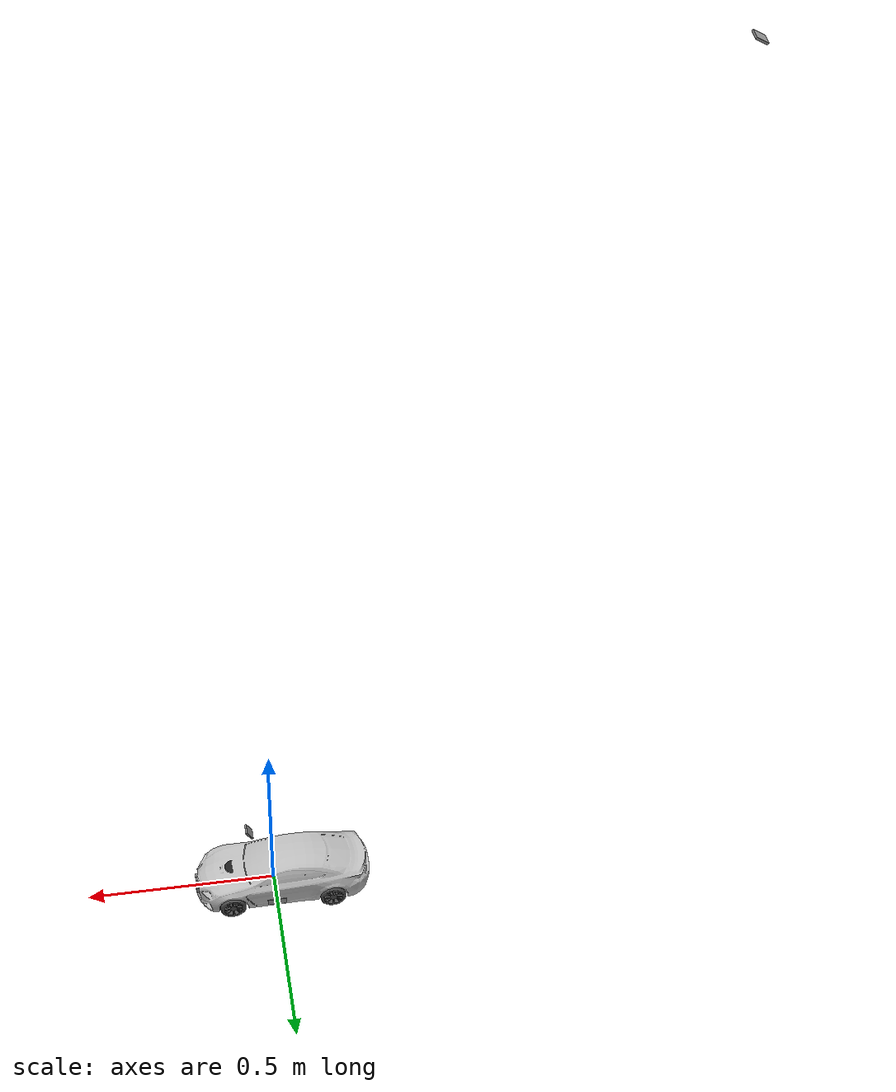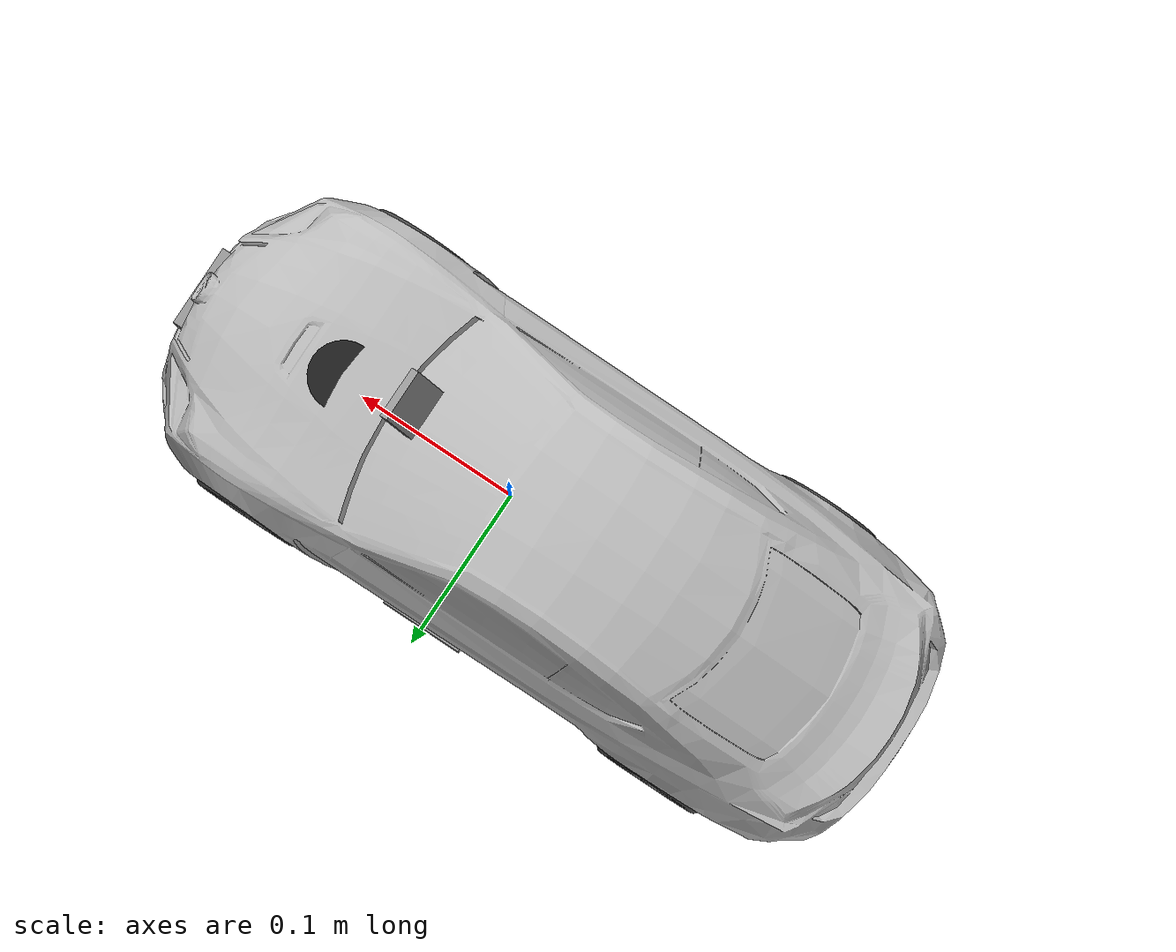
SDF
<?xml version='1.0'?>
<sdf version='1.6'>
  <model name='automobile'>
    <include>
      <uri>model://chassis</uri>
      <pose>0 0 0 0 0 0</pose>
    </include>
    <!-- including a left rear wheel -->
    <include>
      <uri>model://wheel_left</uri>
      <pose>-0.152 0.081 0 0 0 0</pose>
      <name>wheel_rear_left</name>
    </include>
    <!-- including a front rear wheel -->
    <include>
      <uri>model://wheel_right</uri>
      <pose>-0.152 -0.081 0 0 0 0</pose>
      <name>wheel_rear_right</name>
    </include>
    <!-- including a left steering comp. -->
    <include>
      <uri>model://steering_column</uri>
      <pose>0.112 0.0725 0 0 0 0</pose>
      <name>steer_left</name>
    </include>
    <!-- including a right steering comp. -->
    <include>
      <uri>model://steering_column</uri>
      <pose>0.112 -0.0725 0 0 0 0</pose>
      <name>steer_right</name>
    </include>
    <!-- including a left front wheel -->
    <include>
      <uri>model://wheel_left</uri>
      <pose>0.118 0.081 0 0 0 0</pose>
      <name>wheel_front_left</name>
    </include>
    <!-- including a right front wheel -->
    <include>
      <uri>model://wheel_right</uri>
      <pose>0.118 -0.081 0 0 0 0</pose>
      <name>wheel_front_right</name>
    </include>

    <!-- including the camera link -->
    <include>
      <uri>model://camera</uri>
      <pose>0.06 0 0.211 0 0.5235988 0</pose>          <!-- 0.052 the x for wide -->
      <name>camera</name>
    </include>

    <!-- including camera top for 3rd person view -->
    <include>
      <uri>model://camera_top</uri>
      <pose>-1 0 2.5 0 1.04 0</pose>
      <name>camera_top</name>
    </include>

    <!-- including the car body -->
    <include>
      <uri>model://car_body</uri>
      <pose>-0.024 0.0 -0.028 0 0.0 0</pose>
      <name>car_body</name>
    </include>

    <!-- INCLUDING THE ULTRASONIC SENSOR 1 -->
    <include>
      <uri>model://sonar1</uri>
      <pose>0.2 0 0.01 0 0.0 0</pose>
      <name>sonar1</name>
    </include>

    <!-- INCLUDING THE ULTRASONIC SENSOR 2 -->
    <include>
      <uri>model://sonar2</uri>
      <pose>0 -0.08 0.01 0.0 0.0 -1.5708 </pose>
      <name>sonar2</name>
    </include>

    <!-- INCLUDING THE ULTRASONIC SENSOR 3 -->
    <include>
      <uri>model://sonar3</uri>
      <pose>0 0.08 0.01 0.0 0.0 1.5708 </pose>
      <name>sonar3</name>
    </include>

    <!-- INCLUDING THE LIDAR -->

    <include>
      <uri>model://lidar</uri>
      <pose>0.11 0 0.065 0 0 0</pose>
      <name>lidar</name>
    </include>

    <!-- LIST OF JOINTS -->
    <joint name='joint_leftrear_rim' type='revolute'>
      <parent>chassis::link</parent>
      <child>wheel_rear_left::link_rim</child>
      <pose frame=''>0 0 0 0 -0 0</pose>
      <axis>
        <xyz>0 0 -1</xyz>
        <use_parent_model_frame>0</use_parent_model_frame>
        <limit>
          <lower>-1.79769e+308</lower>
          <upper>1.79769e+308</upper>
          <effort>-1</effort>
          <velocity>-1</velocity>
        </limit>
        <dynamics>
          <spring_reference>0</spring_reference>
          <spring_stiffness>0</spring_stiffness>
          <damping>0</damping>
          <friction>0</friction>
        </dynamics>
      </axis>
      <physics>
        <ode>
          <limit>
            <cfm>0</cfm>
            <erp>0.2</erp>
          </limit>
          <suspension>
            <cfm>0</cfm>
            <erp>0.2</erp>
          </suspension>
        </ode>
      </physics>
    </joint>

    <joint name='joint_rightrear_rim' type='revolute'>
      <parent>chassis::link</parent>
      <child>wheel_rear_right::link_rim</child>
      <pose frame=''>0 0 0 0 -0 0</pose>
      <axis>
        <xyz>0 0 -1</xyz>
        <use_parent_model_frame>0</use_parent_model_frame>
        <limit>
          <lower>-1.79769e+308</lower>
          <upper>1.79769e+308</upper>
          <effort>-1</effort>
          <velocity>-1</velocity>
        </limit>
        <dynamics>
          <spring_reference>0</spring_reference>
          <spring_stiffness>0</spring_stiffness>
          <damping>0</damping>
          <friction>0</friction>
        </dynamics>
      </axis>
      <physics>
        <ode>
          <limit>
            <cfm>0</cfm>
            <erp>0.2</erp>
          </limit>
          <suspension>
            <cfm>0</cfm>
            <erp>0.2</erp>
          </suspension>
        </ode>
      </physics>
    </joint>

    <!-- Front right joint between the chassis and the steering comp. -->
    <joint name='joint_leftfront_steer' type='revolute'>
      <parent>chassis::link</parent>
      <child>steer_left::link_steer</child>
      <pose frame=''>0 0 0.005 0 -0 0</pose>
      <axis>
        <xyz>0 1 0</xyz>
        <use_parent_model_frame>0</use_parent_model_frame>
        <limit>
          <lower>-1.79769e+308</lower>
          <upper>1.79769e+308</upper>
          <effort>-1</effort>
          <velocity>-1</velocity>
        </limit>
        <dynamics>
          <spring_reference>0</spring_reference>
          <spring_stiffness>0</spring_stiffness>
          <damping>0</damping>
          <friction>0</friction>
        </dynamics>
      </axis>
      <physics>
        <ode>
          <limit>
            <cfm>0</cfm>
            <erp>0.2</erp>
          </limit>
          <suspension>
            <cfm>0</cfm>
            <erp>0.2</erp>
          </suspension>
        </ode>
      </physics>
    </joint>
    <!-- Front left joint between the chassis and the steering comp. -->
    <joint name='joint_rightfront_steer' type='revolute'>
      <parent>chassis::link</parent>
      <child>steer_right::link_steer</child>
      <pose frame=''>0 0 -0.005 0 -0 0</pose>
      <axis>
        <xyz>0 1 0</xyz>
        <use_parent_model_frame>0</use_parent_model_frame>
        <limit>
          <lower>-1.79769e+308</lower>
          <upper>1.79769e+308</upper>
          <effort>-1</effort>
          <velocity>-1</velocity>
        </limit>
        <dynamics>
          <spring_reference>0</spring_reference>
          <spring_stiffness>0</spring_stiffness>
          <damping>0</damping>
          <friction>0</friction>
        </dynamics>
      </axis>
      <physics>
        <ode>
          <limit>
            <cfm>0</cfm>
            <erp>0.2</erp>
          </limit>
          <suspension>
            <cfm>0</cfm>
            <erp>0.2</erp>
          </suspension>
        </ode>
      </physics>
    </joint>

    <!-- Right joint between the steering and the rim   -->
    <joint name='joint_rightfront_rim' type='revolute'>
      <parent>steer_right::link_steer</parent>
      <child>wheel_front_right::link_rim</child>
      <pose frame=''>0 0 0 0 -0 0</pose>
      <axis>
        <xyz>0 0 -1</xyz>
        <use_parent_model_frame>0</use_parent_model_frame>
        <limit>
          <lower>-1.79769e+308</lower>
          <upper>1.79769e+308</upper>
          <effort>-1</effort>
          <velocity>-1</velocity>
        </limit>
        <dynamics>
          <spring_reference>0</spring_reference>
          <spring_stiffness>0</spring_stiffness>
          <damping>0</damping>
          <friction>0</friction>
        </dynamics>
      </axis>
      <physics>
        <ode>
          <limit>
            <cfm>0</cfm>
            <erp>0.2</erp>
          </limit>
          <suspension>
            <cfm>0</cfm>
            <erp>0.2</erp>
          </suspension>
        </ode>
      </physics>
    </joint>

    <!-- Left joint between the steering and the rim   -->
    <joint name='joint_leftfront_rim' type='revolute'>
      <parent>steer_left::link_steer</parent>
      <child>wheel_front_left::link_rim</child>
      <pose frame=''>0 0 0 0 -0 0</pose>
      <axis>
        <xyz>0 0 -1</xyz>
        <use_parent_model_frame>0</use_parent_model_frame>
        <limit>
          <lower>-1.79769e+308</lower>
          <upper>1.79769e+308</upper>
          <effort>-1</effort>
          <velocity>-1</velocity>
        </limit>
        <dynamics>
          <spring_reference>0</spring_reference>
          <spring_stiffness>0</spring_stiffness>
          <damping>0</damping>
          <friction>0</friction>
        </dynamics>
      </axis>
      <physics>
        <ode>
          <limit>
            <cfm>0</cfm>
            <erp>0.2</erp>
          </limit>
          <suspension>
            <cfm>0</cfm>
            <erp>0.2</erp>
          </suspension>
        </ode>
      </physics>
    </joint>

    <!-- fixed joint for the car body -->
    <joint name='joint_body' type='fixed'>
      <parent>chassis::link</parent>
      <child>car_body::link</child>
      <pose frame=''>0 0 0 0 -0 0</pose>
      <physics>
        <ode>
          <limit>
            <cfm>0</cfm>
            <erp>0.2</erp>
          </limit>
          <suspension>
            <cfm>0</cfm>
            <erp>0.2</erp>
          </suspension>
        </ode>
      </physics>
    </joint>

    <!-- fixed joint for the camera -->
    <joint name='joint_camera' type='fixed'>
      <parent>chassis::link</parent>
      <child>camera::link_camera</child>
      <pose frame=''>0 0 0 0 -0 0</pose>
      <physics>
        <ode>
          <limit>
            <cfm>0</cfm>
            <erp>0.2</erp>
          </limit>
          <suspension>
            <cfm>0</cfm>
            <erp>0.2</erp>
          </suspension>
        </ode>
      </physics>
    </joint>

    <!-- fixed joint for camera top -->
    <joint name='joint_camera_top' type='fixed'>
      <parent>camera::link_camera</parent>
      <child>camera_top::link_camera_top</child>
      <pose frame=''>0 0 0 0 -0 0</pose>
    </joint>

    <!-- fixed joint for the ultrasonic sensor 1 -->
    <joint name='joint_sonar1' type='fixed'>
      <parent>chassis::link</parent>
      <child>sonar1::link_sonar1</child>
      <pose frame=''>0 0 0 0 -0 0</pose>
      <physics>
        <ode>
          <limit>
            <cfm>0</cfm>
            <erp>0.2</erp>
          </limit>
          <suspension>
            <cfm>0</cfm>
            <erp>0.2</erp>
          </suspension>
        </ode>
      </physics>
    </joint>

    <!-- fixed joint for the ultrasonic sensor 2 -->
    <joint name='joint_sonar2' type='fixed'>
      <parent>chassis::link</parent>
      <child>sonar2::link_sonar2</child>
      <pose frame=''>0 0 0 0 -0 0</pose>
      <physics>
        <ode>
          <limit>
            <cfm>0</cfm>
            <erp>0.2</erp>
          </limit>
          <suspension>
            <cfm>0</cfm>
            <erp>0.2</erp>
          </suspension>
        </ode>
      </physics>
    </joint>

    <!-- fixed joint for the ultrasonic sensor 3 -->
    <joint name='joint_sonar3' type='fixed'>
      <parent>chassis::link</parent>
      <child>sonar3::link_sonar3</child>
      <pose frame=''>0 0 0 0 -0 0</pose>
      <physics>
        <ode>
          <limit>
            <cfm>0</cfm>
            <erp>0.2</erp>
          </limit>
          <suspension>
            <cfm>0</cfm>
            <erp>0.2</erp>
          </suspension>
        </ode>
      </physics>
    </joint>

    <!-- Fixed joint for LiDAR -->

    <joint name='joint_lidar' type='fixed'>
      <parent>chassis::link</parent>
      <child>lidar::link_lidar</child>
      <pose frame=''>0 0 0 0 -0 0</pose>
    </joint>

    <!-- Plugin  -->
    <plugin name='CarLikeRobotPlugin' filename='libcar_plugin.so'>
      <wheelbase>0.26</wheelbase>
      <axletrack>0.162</axletrack>
      <wheelradius>0.0325</wheelradius>
      <speed_wheel_joints>
        <front_wheel_joints>
          <leftjoint>joint_leftfront_rim</leftjoint>
          <rightjoint>joint_rightfront_rim</rightjoint>
        </front_wheel_joints>
        <rear_wheel_joints>
          <leftjoint>joint_leftrear_rim</leftjoint>
          <rightjoint>joint_rightrear_rim</rightjoint>
        </rear_wheel_joints>
        <kp>0.01</kp>
        <ki>0.0</ki>
        <kd>0.0</kd>
      </speed_wheel_joints>
      <steer_wheel_joints>
        <leftjoint>joint_leftfront_steer</leftjoint>
        <rightjoint>joint_rightfront_steer</rightjoint>
        <kp>10</kp>
        <ki>0.0</ki>
        <kd>0.1</kd>
      </steer_wheel_joints>
      <initial_steer>0.0</initial_steer>
      <initial_speed>0.0</initial_speed>
      <robotNamespace>/</robotNamespace>
    </plugin>

    <plugin name='bno055' filename='libbno055_plugin.so'> </plugin>
    <plugin name='gps' filename='libgps_plugin.so'> </plugin>
    <plugin name='pose' filename='libpose_plugin.so'> </plugin>

  </model>
</sdf>

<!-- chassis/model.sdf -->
<sdf version='1.6'>
  <model name='chassis'>
    <link name='link'>
      <inertial>
        <mass>0.26244</mass>
        <inertia>
          <ixx>0.00283444</ixx>
          <ixy>0</ixy>
          <ixz>0</ixz>
          <iyy>0.00039867</iyy>
          <iyz>0</iyz>
          <izz>0.00323293</izz>
        </inertia>
        <pose frame=''>0 0 0 0 -0 0</pose>
      </inertial>
      <pose frame=''>0 0 0 0 0 1.5708</pose>
      <gravity>1</gravity>
      <kinematic>0</kinematic>
      <enable_wind>0</enable_wind>
      <visual name='visual'>
        <pose frame=''>0 0 -0.0065 0 0 -1.57079</pose>
        <geometry>
          <mesh>
            <uri>model://chassis/meshes/chassisV5.dae</uri>
            <scale>1 1 1</scale>
          </mesh>
        </geometry>
        <material>
          <lighting>1</lighting>
          <shader type='vertex'>
            <normal_map>__default__</normal_map>
          </shader>
          <ambient>0.6 0.6 0.6 1</ambient>
          <diffuse>0.85 0.85 0.85 1</diffuse>
          <specular>0.6 0.6 0.6 1</specular>
          <emissive>0 0 0 1</emissive>
        </material>
        <transparency>0</transparency>
        <cast_shadows>1</cast_shadows>
      </visual>
      <collision name='collision'>
        <laser_retro>0</laser_retro>
        <max_contacts>10</max_contacts>
        <pose frame=''>0 0 0 0 -0 0</pose>
        <geometry>
          <box>
            <size>0.135 0.36 0.002</size>
          </box>
        </geometry>
        <surface>
          <friction>
            <ode>
              <mu>1</mu>
              <mu2>1</mu2>
              <fdir1>0 0 0</fdir1>
              <slip1>0</slip1>
              <slip2>0</slip2>
            </ode>
            <torsional>
              <coefficient>1</coefficient>
              <patch_radius>0</patch_radius>
              <surface_radius>0</surface_radius>
              <use_patch_radius>1</use_patch_radius>
              <ode>
                <slip>0</slip>
              </ode>
            </torsional>
          </friction>
          <bounce>
            <restitution_coefficient>0</restitution_coefficient>
            <threshold>1e+06</threshold>
          </bounce>
          <contact>
            <collide_without_contact>0</collide_without_contact>
            <collide_without_contact_bitmask>1</collide_without_contact_bitmask>
            <collide_bitmask>1</collide_bitmask>
            <ode>
              <soft_cfm>0</soft_cfm>
              <soft_erp>0.2</soft_erp>
              <kp>1e+13</kp>
              <kd>1</kd>
              <max_vel>0.01</max_vel>
              <min_depth>0</min_depth>
            </ode>
            <bullet>
              <split_impulse>1</split_impulse>
              <split_impulse_penetration_threshold>-0.01</split_impulse_penetration_threshold>
              <soft_cfm>0</soft_cfm>
              <soft_erp>0.2</soft_erp>
              <kp>1e+13</kp>
              <kd>1</kd>
            </bullet>
          </contact>
        </surface>
      </collision>
    </link>
  </model>
</sdf>

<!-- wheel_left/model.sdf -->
<sdf version='1.6'>
  <model name='wheel_left'>

    <link name='link_rim'>
      <inertial>
        <mass>0.038</mass>
        <inertia>
          <ixx>0.00001283</ixx>
          <ixy>0</ixy>
          <ixz>0</ixz>
          <iyy>0.00001283</iyy>
          <iyz>0</iyz>
          <izz>0.00002069</izz>
        </inertia>
        <pose frame=''>0 0 0 0 -0 0</pose>
      </inertial>
      <pose frame=''>0.0 0.0 0 1.5708 0 0</pose>
      <gravity>1</gravity>
      <kinematic>0</kinematic>
      <enable_wind>0</enable_wind>
      <visual name='visual'>
       <pose frame=''>0 0 0 -1.5708 0 0</pose>
       <geometry>
          <mesh>
            <uri>model://wheel_left/meshes/rim.dae</uri>
            <scale>1 1 1</scale>
          </mesh>
        </geometry>
        <material>
          <lighting>1</lighting>
          <shader type='vertex'>
            <normal_map>__default__</normal_map>
          </shader>
          <ambient>0.2 0.2 0.2 1</ambient>
          <diffuse>0.3 0.3 0.3 1</diffuse>
          <specular>0.5 0.5 0.5 1</specular>
          <emissive>0.0 0.0 0.0 0.0</emissive>
        </material>
        <transparency>0</transparency>
        <cast_shadows>1</cast_shadows>
      </visual>
      <collision name='collision'>
        <laser_retro>0</laser_retro>
        <max_contacts>10</max_contacts>
        <pose frame=''>0 0 0 0 -0 0</pose>
        <geometry>
          <cylinder>
            <radius>0.033000</radius>
            <length>0.028000</length>
          </cylinder>
        </geometry>
        <surface>
          <friction>
            <ode>
              <mu>0.7</mu>
              <mu2>0.7</mu2>
              <fdir1>0 0 0</fdir1>
              <slip1>0</slip1>
              <slip2>0</slip2>
            </ode>
            <torsional>
              <coefficient>1</coefficient>
              <patch_radius>0</patch_radius>
              <surface_radius>0</surface_radius>
              <use_patch_radius>1</use_patch_radius>
              <ode>
                <slip>0</slip>
              </ode>
            </torsional>
          </friction>
          <bounce>
            <restitution_coefficient>0</restitution_coefficient>
            <threshold>1e+06</threshold>
          </bounce>
          <contact>
            <collide_without_contact>0</collide_without_contact>
            <collide_without_contact_bitmask>1</collide_without_contact_bitmask>
            <collide_bitmask>1</collide_bitmask>
            <ode>
              <soft_cfm>0</soft_cfm>
              <soft_erp>0.2</soft_erp>
              <kp>1e+07</kp>
              <kd>1</kd>
              <max_vel>0.01</max_vel>
              <min_depth>0</min_depth>
            </ode>
            <bullet>
              <split_impulse>1</split_impulse>
              <split_impulse_penetration_threshold>-0.01</split_impulse_penetration_threshold>
              <soft_cfm>0</soft_cfm>
              <soft_erp>0.2</soft_erp>
              <kp>1e+07</kp>
              <kd>1</kd>
            </bullet>
          </contact>
        </surface>
      </collision>
    </link>

  </model>
</sdf>

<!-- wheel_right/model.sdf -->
<sdf version='1.6'>
  <model name='wheel_right'>

    <link name='link_rim'>
      <inertial>
        <mass>0.038</mass>
        <inertia>
          <ixx>0.00001283</ixx>
          <ixy>0</ixy>
          <ixz>0</ixz>
          <iyy>0.00001283</iyy>
          <iyz>0</iyz>
          <izz>0.00002069</izz>
        </inertia>
        <pose frame=''>0 0 0 0 -0 0</pose>
      </inertial>
      <pose frame=''>0.0 0.0 0 1.5708 0 0</pose>
      <gravity>1</gravity>
      <kinematic>0</kinematic>
      <enable_wind>0</enable_wind>
      <visual name='visual'>
       <pose frame=''>0 0 0 -1.5708 0 0</pose>
       <geometry>
          <mesh>
            <uri>model://wheel_right/meshes/rim.dae</uri>
            <scale>1 1 1</scale>
          </mesh>
        </geometry>
        <material>
          <lighting>1</lighting>
          <shader type='vertex'>
            <normal_map>__default__</normal_map>
          </shader>
          <ambient>0.2 0.2 0.2 1</ambient>
          <diffuse>0.3 0.3 0.3 1</diffuse>
          <specular>0.5 0.5 0.5 1</specular>
          <emissive>0.0 0.0 0.0 0.0</emissive>
        </material>
        <transparency>0</transparency>
        <cast_shadows>1</cast_shadows>
      </visual>
      <collision name='collision'>
        <laser_retro>0</laser_retro>
        <max_contacts>10</max_contacts>
        <pose frame=''>0 0 0 0 -0 0</pose>
        <geometry>
          <cylinder>
            <radius>0.033000</radius>
            <length>0.028000</length>
          </cylinder>
        </geometry>
        <surface>
          <friction>
            <ode>
              <mu>0.7</mu>
              <mu2>0.7</mu2>
              <fdir1>0 0 0</fdir1>
              <slip1>0</slip1>
              <slip2>0</slip2>
            </ode>
            <torsional>
              <coefficient>1</coefficient>
              <patch_radius>0</patch_radius>
              <surface_radius>0</surface_radius>
              <use_patch_radius>1</use_patch_radius>
              <ode>
                <slip>0</slip>
              </ode>
            </torsional>
          </friction>
          <bounce>
            <restitution_coefficient>0</restitution_coefficient>
            <threshold>1e+06</threshold>
          </bounce>
          <contact>
            <collide_without_contact>0</collide_without_contact>
            <collide_without_contact_bitmask>1</collide_without_contact_bitmask>
            <collide_bitmask>1</collide_bitmask>
            <ode>
              <soft_cfm>0</soft_cfm>
              <soft_erp>0.2</soft_erp>
              <kp>1e+07</kp>
              <kd>1</kd>
              <max_vel>0.01</max_vel>
              <min_depth>0</min_depth>
            </ode>
            <bullet>
              <split_impulse>1</split_impulse>
              <split_impulse_penetration_threshold>-0.01</split_impulse_penetration_threshold>
              <soft_cfm>0</soft_cfm>
              <soft_erp>0.2</soft_erp>
              <kp>1e+07</kp>
              <kd>1</kd>
            </bullet>
          </contact>
        </surface>
      </collision>
    </link>

  </model>
</sdf>

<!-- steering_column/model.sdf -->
<sdf version='1.6'>
  <model name='steering_column'>
    <link name='link_steer'>
      <inertial>
        <mass>0.001</mass>
        <inertia>
          <ixx>0.00014583</ixx>
          <ixy>0</ixy>
          <ixz>0</ixz>
          <iyy>0.00014583</iyy>
          <iyz>0</iyz>
          <izz>0.000125</izz>
        </inertia>
        <pose frame=''>0 0 0 0 -0 0</pose>
      </inertial>
      <pose frame=''>0 0 0 1.5708 0 0</pose>
      <gravity>1</gravity>
      <self_collide>0</self_collide>
      <kinematic>0</kinematic>
      <enable_wind>0</enable_wind>
      <visual name='visual'>
        <pose frame=''>0 0 0 0 -0 0</pose>
        <geometry>
          <cylinder>
            <radius>0.001</radius>
            <length>0.01</length>
          </cylinder>
        </geometry>
        <material>
          <lighting>1</lighting>
          <script>
            <uri>file://media/materials/scripts/gazebo.material</uri>
            <name>Gazebo/Grey</name>
          </script>
          <shader type='vertex'>
            <normal_map>__default__</normal_map>
          </shader>
          <ambient>0.3 0.3 0.3 1</ambient>
          <diffuse>0.7 0.7 0.7 1</diffuse>
          <specular>0.01 0.01 0.01 1</specular>
          <emissive>0 0 0 1</emissive>
        </material>
        <transparency>0</transparency>
        <cast_shadows>1</cast_shadows>
      </visual>
      <collision name='collision'>
        <laser_retro>0</laser_retro>
        <max_contacts>10</max_contacts>
        <pose frame=''>0 0 0 0 -0 0</pose>
        <geometry>
          <cylinder>
            <radius>0.001</radius>
            <length>0.01</length>
          </cylinder>
        </geometry>
        <surface>
          <friction>
            <ode>
              <mu>1</mu>
              <mu2>1</mu2>
              <fdir1>0 0 0</fdir1>
              <slip1>0</slip1>
              <slip2>0</slip2>
            </ode>
            <torsional>
              <coefficient>1</coefficient>
              <patch_radius>0</patch_radius>
              <surface_radius>0</surface_radius>
              <use_patch_radius>1</use_patch_radius>
              <ode>
                <slip>0</slip>
              </ode>
            </torsional>
          </friction>
          <bounce>
            <restitution_coefficient>0</restitution_coefficient>
            <threshold>1e+06</threshold>
          </bounce>
          <contact>
            <collide_without_contact>0</collide_without_contact>
            <collide_without_contact_bitmask>1</collide_without_contact_bitmask>
            <collide_bitmask>1</collide_bitmask>
            <ode>
              <soft_cfm>0</soft_cfm>
              <soft_erp>0.2</soft_erp>
              <kp>1e+13</kp>
              <kd>1</kd>
              <max_vel>0.01</max_vel>
              <min_depth>0</min_depth>
            </ode>
            <bullet>
              <split_impulse>1</split_impulse>
              <split_impulse_penetration_threshold>-0.01</split_impulse_penetration_threshold>
              <soft_cfm>0</soft_cfm>
              <soft_erp>0.2</soft_erp>
              <kp>1e+13</kp>
              <kd>1</kd>
            </bullet>
          </contact>
        </surface>
      </collision>
    </link>

  </model>
</sdf>

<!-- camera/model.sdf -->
<sdf version='1.6'>
  <model name='camera'>
    <link name='link_camera'>
      <inertial>
        <mass>0.0052875</mass>
        <inertia>
          <ixx>4.1e-07</ixx>
          <ixy>0</ixy>
          <ixz>0</ixz>
          <iyy>7.9e-07</iyy>
          <iyz>0</iyz>
          <izz>4.1e-07</izz>
        </inertia>
        <pose frame=''>0 0 0 0 -0 0</pose>
      </inertial>
      <pose frame=''>0 0 0 0 -0 0</pose>
      <gravity>1</gravity>
      <self_collide>0</self_collide>
      <kinematic>0</kinematic>
      <enable_wind>0</enable_wind>
      <visual name='visual'>
        <pose frame=''>0 0 0 0 -0 0</pose>
        <geometry>
          <box>
            <size>0.005 0.03 0.03</size>
          </box>
        </geometry>
        <material>
          <lighting>1</lighting>
          <script>
            <uri>file://media/materials/scripts/gazebo.material</uri>
            <name>Gazebo/Grey</name>
          </script>
          <shader type='vertex'>
            <normal_map>__default__</normal_map>
          </shader>
          <ambient>0.3 0.3 0.3 1</ambient>
          <diffuse>0.7 0.7 0.7 1</diffuse>
          <specular>0.01 0.01 0.01 1</specular>
          <emissive>0 0 0 1</emissive>
        </material>
        <transparency>0</transparency>
        <cast_shadows>1</cast_shadows>
      </visual>
      <sensor type="camera" name="camera1">
        <update_rate>150.0</update_rate>
        <camera name="head">
            <horizontal_fov>1.22173</horizontal_fov>  <!-- 1.6 is the widest -->
          <image>
            <width>320</width>
            <height>240</height>
            <format>R8G8B8</format>
          </image>
          <clip>
            <near>0.02</near>
            <far>4.0</far>
          </clip>
          <noise>
            <type>gaussian</type>
            <mean>0.0</mean>
            <stddev>0.0</stddev>
          </noise>
        </camera>

        <plugin name="camera_controller" filename="libgazebo_ros_camera.so">
          <alwaysOn>true</alwaysOn>
          <updateRate>0.0</updateRate>
          <imageTopicName>image_raw</imageTopicName>
          <cameraInfoTopicName>camera_info</cameraInfoTopicName>
          <frameName>link_camera</frameName>
          <hackBaseline>0.0</hackBaseline>
          <distortionK1>0.0</distortionK1>
          <distortionK2>0.0</distortionK2>
          <distortionK3>0.0</distortionK3>
          <distortionT1>0.0</distortionT1>
          <distortionT2>0.0</distortionT2>
	  <robotNamespace></robotNamespace>
        </plugin>

      </sensor>
    </link>
  </model>
</sdf>

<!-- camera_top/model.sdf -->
<sdf version='1.6'>
  <model name='camera_top'>
    <link name='link_camera_top'>
      <inertial>
        <mass>0.000000001</mass>
        <inertia>
          <ixx>4.1e-08</ixx>
          <ixy>0</ixy>
          <ixz>0</ixz>
          <iyy>7.9e-08</iyy>
          <iyz>0</iyz>
          <izz>4.1e-08</izz>
        </inertia>
        <pose frame=''>0 0 0 0 -0 0</pose>
      </inertial>
      <pose frame=''>0 0 0 0 -0 0</pose>
      <gravity>0</gravity>
      <self_collide>0</self_collide>
      <kinematic>0</kinematic>
      <enable_wind>0</enable_wind>
      <visual name='visual'>
        <pose frame=''>0 0 0 0 -0 0</pose>
        <geometry>
          <box>
            <size>0.005 0.03 0.03</size>
          </box>
        </geometry>
        <material>
          <lighting>1</lighting>
          <script>
            <uri>file://media/materials/scripts/gazebo.material</uri>
            <name>Gazebo/Grey</name>
          </script>
          <shader type='vertex'>
            <normal_map>__default__</normal_map>
          </shader>
          <ambient>0.3 0.3 0.3 1</ambient>
          <diffuse>0.7 0.7 0.7 1</diffuse>
          <specular>0.01 0.01 0.01 1</specular>
          <emissive>0 0 0 1</emissive>
        </material>
        <transparency>0</transparency>
        <cast_shadows>0</cast_shadows>
      </visual>
      <sensor type="camera" name="camera_top">
        <update_rate>15.0</update_rate>
        <camera name="camera_top">
          <horizontal_fov>1.085594795</horizontal_fov>
          <image>
            <width>240</width>
            <height>240</height>
            <format>R8G8B8</format>
          </image>
          <clip>
            <near>0.02</near>
            <far>4.5</far>
          </clip>
        </camera>

        <plugin name="camera_controller_top" filename="libgazebo_ros_camera.so">
          <alwaysOn>true</alwaysOn>
          <updateRate>0.0</updateRate>
          <imageTopicName>image_top</imageTopicName>
          <cameraInfoTopicName>camera_top_info</cameraInfoTopicName>
          <frameName>link_camera_top</frameName>
          <hackBaseline>0.0</hackBaseline>
          <distortionK1>0.0</distortionK1>
          <distortionK2>0.0</distortionK2>
          <distortionK3>0.0</distortionK3>
          <distortionT1>0.0</distortionT1>
          <distortionT2>0.0</distortionT2>
	  <robotNamespace></robotNamespace>
        </plugin>

      </sensor>
    </link>
  </model>
</sdf>

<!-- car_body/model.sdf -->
<sdf version='1.6'>
  <model name='body'>
    <link name='link'>
      <inertial>
        <mass>1</mass>
        <inertia>
          <ixx>0.166667</ixx>
          <ixy>0</ixy>
          <ixz>0</ixz>
          <iyy>0.166667</iyy>
          <iyz>0</iyz>
          <izz>0.166667</izz>
        </inertia>
      </inertial>
      <pose frame=''>0 -0 0 0 -0 0</pose>
      <visual name='visual'>
        <pose frame=''>0 0 0 0 -0 0</pose>
        <geometry>
          <mesh>
            <uri>model://car_body/meshes/CarBody.dae</uri>
            <scale>1 1 1</scale>
          </mesh>
        </geometry>
        <material>
            <script>
              <uri>model://car_body/materials/scripts</uri>
              <uri>model://car_body/materials/textures</uri>
              <name>CarBody/Image</name>
            </script>
        </material>
        <transparency>0</transparency>
        <cast_shadows>1</cast_shadows>
      </visual>
    </link>
    <static>0</static>
    <allow_auto_disable>1</allow_auto_disable>
  </model>
</sdf>

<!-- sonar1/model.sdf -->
<sdf version='1.6'>
  <model name='sonar1'>
    <link name='link_sonar1'>
      <inertial>
        <mass>0.0052875</mass>
        <inertia>
          <ixx>4.1e-07</ixx>
          <ixy>0</ixy>
          <ixz>0</ixz>
          <iyy>7.9e-07</iyy>
          <iyz>0</iyz>
          <izz>4.1e-07</izz>
        </inertia>
        <pose frame=''>0 0 0 0 -0 0</pose>
      </inertial>
      <pose frame=''>0 0 0 0 -0 0</pose>
      <gravity>1</gravity>
      <self_collide>0</self_collide>
      <kinematic>0</kinematic>
      <enable_wind>0</enable_wind>
      <visual name='visual'>
        <pose frame=''>0 0 0 0 -0 0</pose>
        <geometry>
          <box>
            <size>0.02 0.05 0.02</size>
          </box>
        </geometry>
        <material>
          <lighting>1</lighting>
          <script>
            <uri>file://media/materials/scripts/gazebo.material</uri>
            <name>Gazebo/Grey</name>
          </script>
          <shader type='vertex'>
            <normal_map>__default__</normal_map>
          </shader>
          <ambient>0.3 0.3 0.3 1</ambient>
          <diffuse>0.7 0.7 0.7 1</diffuse>
          <specular>0.01 0.01 0.01 1</specular>
          <emissive>0 0 0 1</emissive>
        </material>
        <transparency>0</transparency>
        <cast_shadows>1</cast_shadows>
      </visual>
      <collision name='collision'>
        <laser_retro>0</laser_retro>
        <max_contacts>10</max_contacts>
        <pose frame=''>0 0 0 0 -0 0</pose>
        <geometry>
          <box>
            <size>0.02 0.05 0.02</size>
          </box>
        </geometry>
        <surface>
          <friction>
            <ode>
              <mu>1</mu>
              <mu2>1</mu2>
              <fdir1>0 0 0</fdir1>
              <slip1>0</slip1>
              <slip2>0</slip2>
            </ode>
            <torsional>
              <coefficient>1</coefficient>
              <patch_radius>0</patch_radius>
              <surface_radius>0</surface_radius>
              <use_patch_radius>1</use_patch_radius>
              <ode>
                <slip>0</slip>
              </ode>
            </torsional>
          </friction>
          <bounce>
            <restitution_coefficient>0</restitution_coefficient>
            <threshold>1e+06</threshold>
          </bounce>
          <contact>
            <collide_without_contact>0</collide_without_contact>
            <collide_without_contact_bitmask>1</collide_without_contact_bitmask>
            <collide_bitmask>1</collide_bitmask>
            <ode>
              <soft_cfm>0</soft_cfm>
              <soft_erp>0.2</soft_erp>
              <kp>1e+13</kp>
              <kd>1</kd>
              <max_vel>0.01</max_vel>
              <min_depth>0</min_depth>
            </ode>
            <bullet>
              <split_impulse>1</split_impulse>
              <split_impulse_penetration_threshold>-0.01</split_impulse_penetration_threshold>
              <soft_cfm>0</soft_cfm>
              <soft_erp>0.2</soft_erp>
              <kp>1e+13</kp>
              <kd>1</kd>
            </bullet>
          </contact>
        </surface>
      </collision>
      <sensor type="ray" name="sonar">
        <pose>0.001 0 0 0 0 0</pose>
        <visualize>false</visualize>
        <update_rate>20</update_rate>
        <ray>
          <scan>
            <horizontal>
              <samples>10</samples>
              <resolution>1.0</resolution>
              <min_angle>-0.15</min_angle>
              <max_angle>0.15</max_angle>
            </horizontal>
            <vertical>
              <samples>1</samples>
              <resolution>1</resolution>
              <min_angle>0.15</min_angle>
              <max_angle>0.15</max_angle>
            </vertical>
          </scan>
          <range>
            <min>0.01</min>
            <max>1.00</max>
            <resolution>0.01</resolution>
          </range>
        </ray>
        <plugin filename="libgazebo_ros_range.so" name="gazebo_ros_range">
          <gaussianNoise>0.005</gaussianNoise>
          <alwaysOn>true</alwaysOn>
          <updateRate>20</updateRate>
          <topicName>/automobile/sonar1</topicName>
          <frameName>ultrasonic</frameName>
          <fov>0.3</fov>
          <radiation>ultrasound</radiation>
        </plugin>
      </sensor>
    </link>
  </model>
</sdf>

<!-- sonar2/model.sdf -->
<sdf version='1.6'>
  <model name='sonar2'>
    <link name='link_sonar2'>
      <inertial>
        <mass>0.0052875</mass>
        <inertia>
          <ixx>4.1e-07</ixx>
          <ixy>0</ixy>
          <ixz>0</ixz>
          <iyy>7.9e-07</iyy>
          <iyz>0</iyz>
          <izz>4.1e-07</izz>
        </inertia>
        <pose frame=''>0 0 0 0 -0 0</pose>
      </inertial>
      <pose frame=''>0 0 0 0 -0 0</pose>
      <gravity>1</gravity>
      <self_collide>0</self_collide>
      <kinematic>0</kinematic>
      <enable_wind>0</enable_wind>
      <visual name='visual'>
        <pose frame=''>0 0 0 0 -0 0</pose>
        <geometry>
          <box>
            <size>0.02 0.05 0.02</size>
          </box>
        </geometry>
        <material>
          <lighting>1</lighting>
          <script>
            <uri>file://media/materials/scripts/gazebo.material</uri>
            <name>Gazebo/Grey</name>
          </script>
          <shader type='vertex'>
            <normal_map>__default__</normal_map>
          </shader>
          <ambient>0.3 0.3 0.3 1</ambient>
          <diffuse>0.7 0.7 0.7 1</diffuse>
          <specular>0.01 0.01 0.01 1</specular>
          <emissive>0 0 0 1</emissive>
        </material>
        <transparency>0</transparency>
        <cast_shadows>1</cast_shadows>
      </visual>
      <collision name='collision'>
        <laser_retro>0</laser_retro>
        <max_contacts>10</max_contacts>
        <pose frame=''>0 0 0 0 -0 0</pose>
        <geometry>
          <box>
            <size>0.02 0.05 0.02</size>
          </box>
        </geometry>
        <surface>
          <friction>
            <ode>
              <mu>1</mu>
              <mu2>1</mu2>
              <fdir1>0 0 0</fdir1>
              <slip1>0</slip1>
              <slip2>0</slip2>
            </ode>
            <torsional>
              <coefficient>1</coefficient>
              <patch_radius>0</patch_radius>
              <surface_radius>0</surface_radius>
              <use_patch_radius>1</use_patch_radius>
              <ode>
                <slip>0</slip>
              </ode>
            </torsional>
          </friction>
          <bounce>
            <restitution_coefficient>0</restitution_coefficient>
            <threshold>1e+06</threshold>
          </bounce>
          <contact>
            <collide_without_contact>0</collide_without_contact>
            <collide_without_contact_bitmask>1</collide_without_contact_bitmask>
            <collide_bitmask>1</collide_bitmask>
            <ode>
              <soft_cfm>0</soft_cfm>
              <soft_erp>0.2</soft_erp>
              <kp>1e+13</kp>
              <kd>1</kd>
              <max_vel>0.01</max_vel>
              <min_depth>0</min_depth>
            </ode>
            <bullet>
              <split_impulse>1</split_impulse>
              <split_impulse_penetration_threshold>-0.01</split_impulse_penetration_threshold>
              <soft_cfm>0</soft_cfm>
              <soft_erp>0.2</soft_erp>
              <kp>1e+13</kp>
              <kd>1</kd>
            </bullet>
          </contact>
        </surface>
      </collision>
      <sensor type="ray" name="sonar">
        <pose>0.001 0 0 0 0 0</pose>
        <visualize>false</visualize>
        <update_rate>20</update_rate>
        <ray>
          <scan>
            <horizontal>
              <samples>10</samples>
              <resolution>1.0</resolution>
              <min_angle>-0.15</min_angle>
              <max_angle>0.15</max_angle>
            </horizontal>
            <vertical>
              <samples>1</samples>
              <resolution>1</resolution>
              <min_angle>0.15</min_angle>
              <max_angle>0.15</max_angle>
            </vertical>
          </scan>
          <range>
            <min>0.01</min>
            <max>1.00</max>
            <resolution>0.01</resolution>
          </range>
        </ray>
        <plugin filename="libgazebo_ros_range.so" name="gazebo_ros_range">
          <gaussianNoise>0.005</gaussianNoise>
          <alwaysOn>true</alwaysOn>
          <updateRate>20</updateRate>
          <topicName>/automobile/sonar2</topicName>
          <frameName>ultrasonic</frameName>
          <fov>0.3</fov>
          <radiation>ultrasound</radiation>
        </plugin>
      </sensor>
    </link>
  </model>
</sdf>

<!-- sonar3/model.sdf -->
<sdf version='1.6'>
  <model name='sonar3'>
    <link name='link_sonar3'>
      <inertial>
        <mass>0.0052875</mass>
        <inertia>
          <ixx>4.1e-07</ixx>
          <ixy>0</ixy>
          <ixz>0</ixz>
          <iyy>7.9e-07</iyy>
          <iyz>0</iyz>
          <izz>4.1e-07</izz>
        </inertia>
        <pose frame=''>0 0 0 0 -0 0</pose>
      </inertial>
      <pose frame=''>0 0 0 0 -0 0</pose>
      <gravity>1</gravity>
      <self_collide>0</self_collide>
      <kinematic>0</kinematic>
      <enable_wind>0</enable_wind>
      <visual name='visual'>
        <pose frame=''>0 0 0 0 -0 0</pose>
        <geometry>
          <box>
            <size>0.02 0.05 0.02</size>
          </box>
        </geometry>
        <material>
          <lighting>1</lighting>
          <script>
            <uri>file://media/materials/scripts/gazebo.material</uri>
            <name>Gazebo/Grey</name>
          </script>
          <shader type='vertex'>
            <normal_map>__default__</normal_map>
          </shader>
          <ambient>0.3 0.3 0.3 1</ambient>
          <diffuse>0.7 0.7 0.7 1</diffuse>
          <specular>0.01 0.01 0.01 1</specular>
          <emissive>0 0 0 1</emissive>
        </material>
        <transparency>0</transparency>
        <cast_shadows>1</cast_shadows>
      </visual>
      <collision name='collision'>
        <laser_retro>0</laser_retro>
        <max_contacts>10</max_contacts>
        <pose frame=''>0 0 0 0 -0 0</pose>
        <geometry>
          <box>
            <size>0.02 0.05 0.02</size>
          </box>
        </geometry>
        <surface>
          <friction>
            <ode>
              <mu>1</mu>
              <mu2>1</mu2>
              <fdir1>0 0 0</fdir1>
              <slip1>0</slip1>
              <slip2>0</slip2>
            </ode>
            <torsional>
              <coefficient>1</coefficient>
              <patch_radius>0</patch_radius>
              <surface_radius>0</surface_radius>
              <use_patch_radius>1</use_patch_radius>
              <ode>
                <slip>0</slip>
              </ode>
            </torsional>
          </friction>
          <bounce>
            <restitution_coefficient>0</restitution_coefficient>
            <threshold>1e+06</threshold>
          </bounce>
          <contact>
            <collide_without_contact>0</collide_without_contact>
            <collide_without_contact_bitmask>1</collide_without_contact_bitmask>
            <collide_bitmask>1</collide_bitmask>
            <ode>
              <soft_cfm>0</soft_cfm>
              <soft_erp>0.2</soft_erp>
              <kp>1e+13</kp>
              <kd>1</kd>
              <max_vel>0.01</max_vel>
              <min_depth>0</min_depth>
            </ode>
            <bullet>
              <split_impulse>1</split_impulse>
              <split_impulse_penetration_threshold>-0.01</split_impulse_penetration_threshold>
              <soft_cfm>0</soft_cfm>
              <soft_erp>0.2</soft_erp>
              <kp>1e+13</kp>
              <kd>1</kd>
            </bullet>
          </contact>
        </surface>
      </collision>
      <sensor type="ray" name="sonar">
        <pose>0.001 0 0 0 0 0</pose>
        <visualize>true</visualize>
        <update_rate>20</update_rate>
        <ray>
          <scan>
            <horizontal>
              <samples>10</samples>
              <resolution>1.0</resolution>
              <min_angle>-0.15</min_angle>
              <max_angle>0.15</max_angle>
            </horizontal>
            <vertical>
              <samples>1</samples>
              <resolution>1</resolution>
              <min_angle>0.15</min_angle>
              <max_angle>0.15</max_angle>
            </vertical>
          </scan>
          <range>
            <min>0.01</min>
            <max>1.00</max>
            <resolution>0.01</resolution>
          </range>
        </ray>
        <plugin filename="libgazebo_ros_range.so" name="gazebo_ros_range">
          <gaussianNoise>0.005</gaussianNoise>
          <alwaysOn>true</alwaysOn>
          <updateRate>20</updateRate>
          <topicName>/automobile/sonar3</topicName>
          <frameName>ultrasonic</frameName>
          <fov>0.3</fov>
          <radiation>ultrasound</radiation>
        </plugin>
      </sensor>
    </link>
  </model>
</sdf>

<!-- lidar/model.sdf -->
<sdf version='1.6'>
  <model name='lidar'>
    <link name='link_lidar'>

      <pose>0 0 0 0 0 0</pose>

      <visual name='visual'>
        <geometry>
          <cylinder>
            <radius>0.02</radius>
            <length>0.005</length>
          </cylinder>
        </geometry>
        <material>
          <script>
            <uri>file://media/materials/scripts/gazebo.material</uri>
            <name>Gazebo/Black</name>
          </script>
        </material>
      </visual>

      <!-- sensor conf -->
      <sensor type='ray' name='lidar_sensor'>
        <pose>0 0 0.00025 0 0 0</pose>
        <visualize>true</visualize>
        <update_rate>20</update_rate>
        <ray>
          <scan>
            <horizontal>
              <samples>360</samples>       <!-- 360 points per scan -->
              <resolution>1.0</resolution>
              <min_angle>-2.2689</min_angle>
              <max_angle>2.2689</max_angle>
            </horizontal>
            <vertical>
              <samples>1</samples>         <!-- 2D LiDAR -->
              <resolution>1.0</resolution>
              <min_angle>0</min_angle>
              <max_angle>0</max_angle>
            </vertical>
          </scan>
          <range>
            <min>0.15</min>               <!-- 15cm min range -->
            <max>12.0</max>               <!-- 12m max range -->
            <resolution>0.03</resolution>
          </range>
        </ray>

        <!-- ROS Plugin for Laser scan -->
        <plugin name='lidar_plugin' filename='libgazebo_ros_laser.so'>
          <topicName>/scan</topicName>
          <frameName>lidar_link</frameName>
        </plugin>
      </sensor>
    </link>
  </model>
</sdf>
